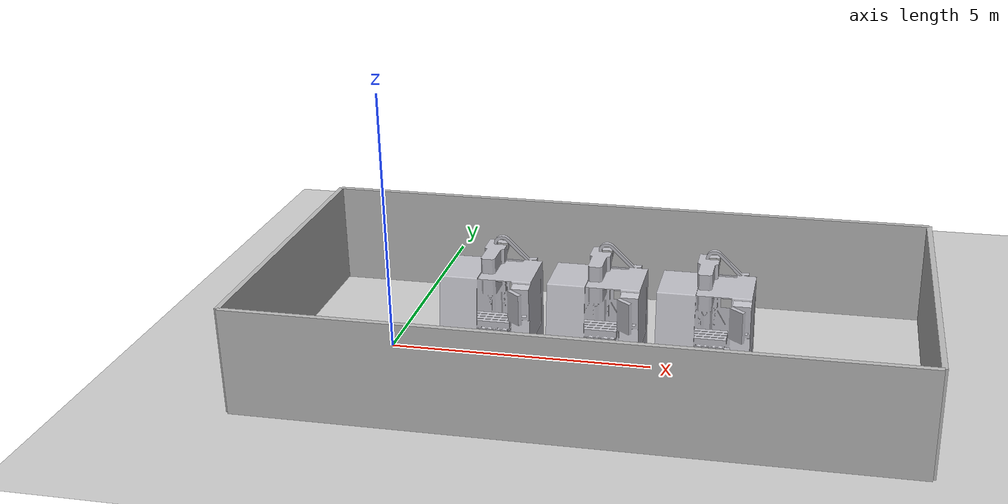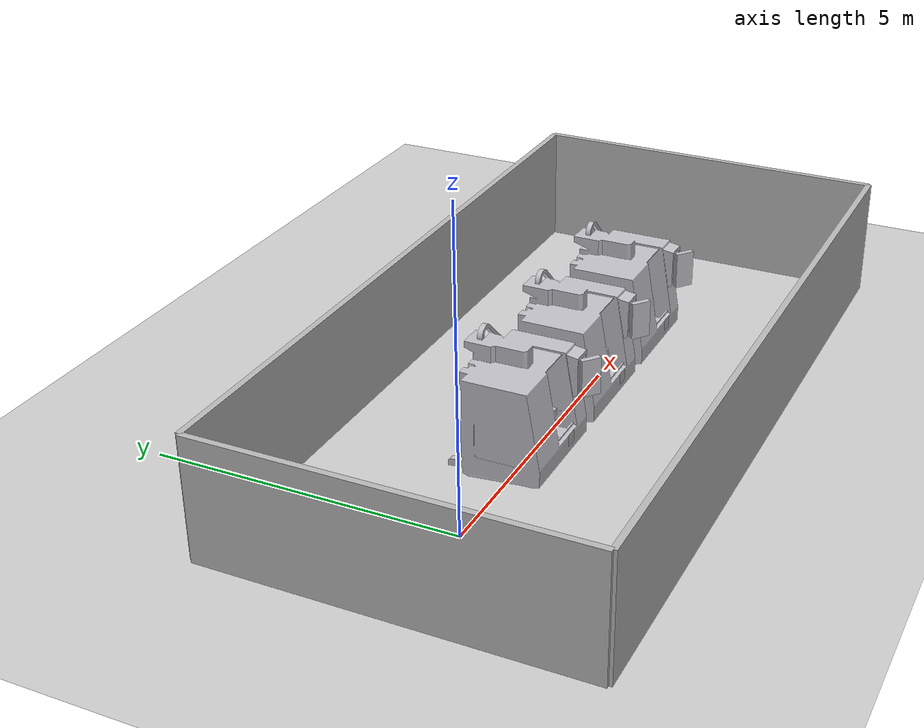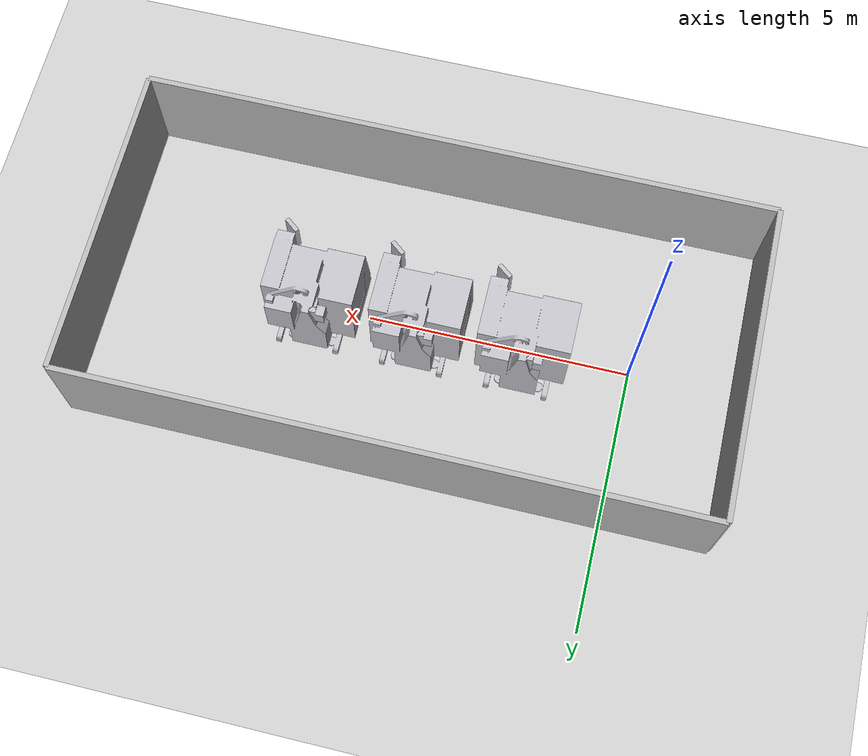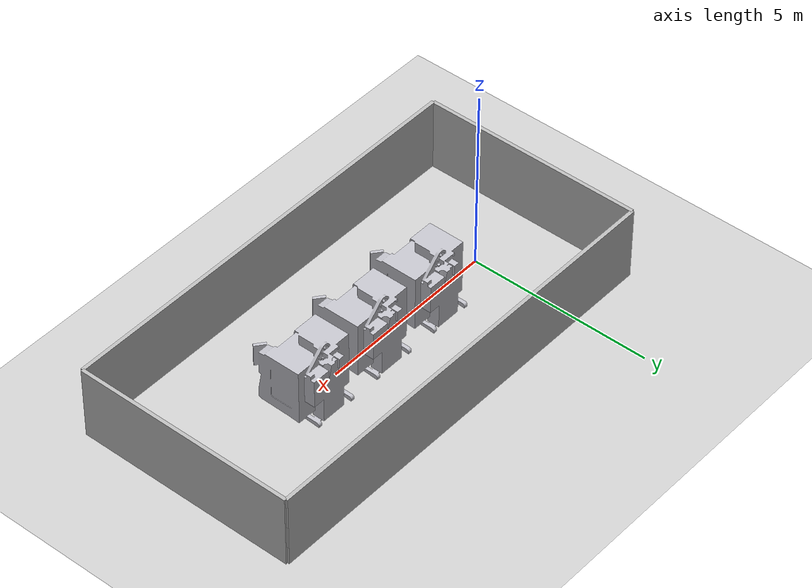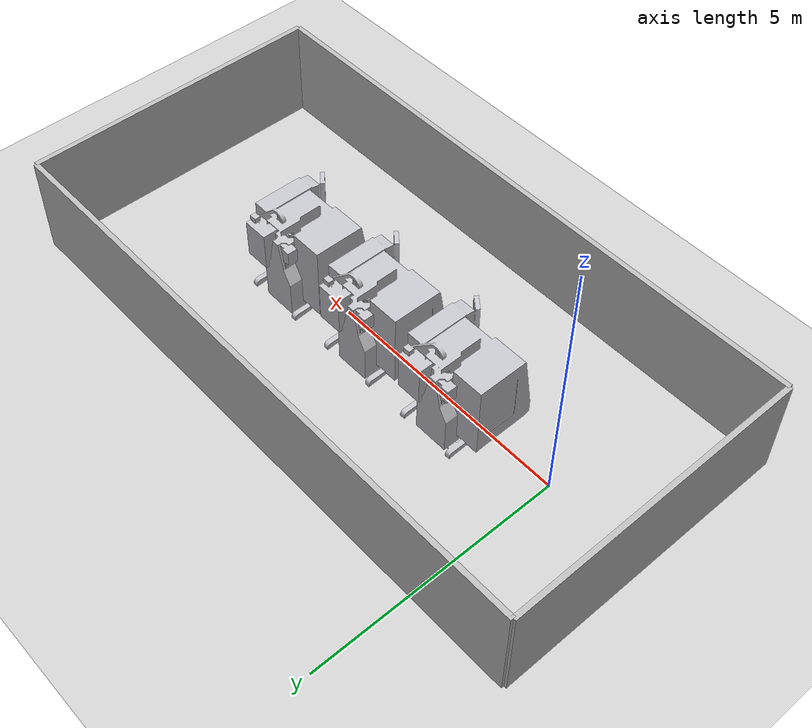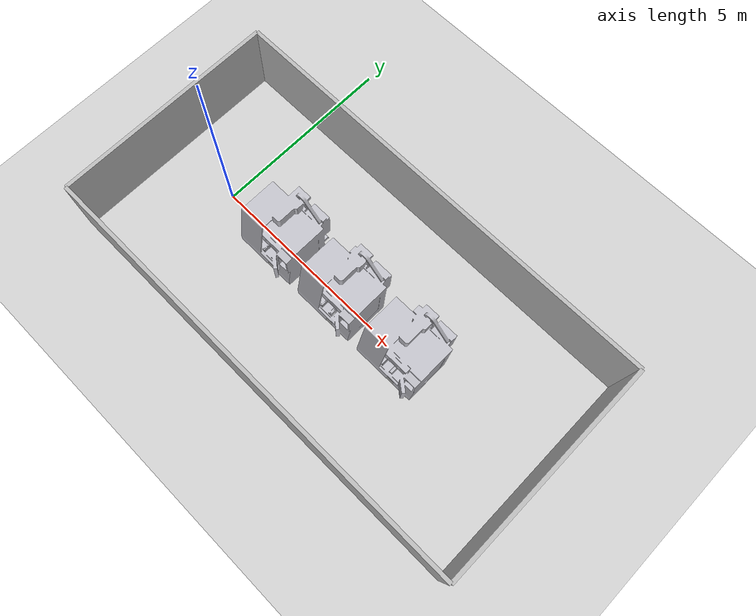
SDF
<?xml version="1.0" ?>
<sdf version="1.6">
  <world name="default">
    <include>
      <uri>model://sun</uri>
    </include>
    <include>
      <uri>model://ground_plane</uri>
    </include>

    <!-- Brick wall perimeter (offline, simple boxes) -->
    <model name="brick_wall_perimeter">
      <static>true</static>

      <!-- Rectangle centered near CNC row: x≈4, y≈0 -->

      <!-- North wall (positive Y) -->
      <link name="north_wall">
        <pose>4 3 1 0 0 0</pose>
        <collision name="collision">
          <geometry>
            <box><size>12 0.1 2</size></box>
          </geometry>
        </collision>
        <visual name="visual">
          <geometry>
            <box><size>12 0.1 2</size></box>
          </geometry>
          <material>
            <script>
              <uri>file://media/materials/scripts/gazebo.material</uri>
              <name>Gazebo/Brick</name>
            </script>
          </material>
        </visual>
      </link>

      <!-- South wall (negative Y) -->
      <link name="south_wall">
        <pose>4 -3 1 0 0 0</pose>
        <collision name="collision">
          <geometry>
            <box><size>12 0.1 2</size></box>
          </geometry>
        </collision>
        <visual name="visual">
          <geometry>
            <box><size>12 0.1 2</size></box>
          </geometry>
          <material>
            <script>
              <uri>file://media/materials/scripts/gazebo.material</uri>
              <name>Gazebo/Brick</name>
            </script>
          </material>
        </visual>
      </link>

      <!-- East wall (positive X) -->
      <link name="east_wall">
        <pose>10 0 1 0 0 0</pose>
        <collision name="collision">
          <geometry>
            <box><size>0.1 6 2</size></box>
          </geometry>
        </collision>
        <visual name="visual">
          <geometry>
            <box><size>0.1 6 2</size></box>
          </geometry>
          <material>
            <script>
              <uri>file://media/materials/scripts/gazebo.material</uri>
              <name>Gazebo/Brick</name>
            </script>
          </material>
        </visual>
      </link>

      <!-- West wall (negative X) -->
      <link name="west_wall">
        <pose>-2 0 1 0 0 0</pose>
        <collision name="collision">
          <geometry>
            <box><size>0.1 6 2</size></box>
          </geometry>
        </collision>
        <visual name="visual">
          <geometry>
            <box><size>0.1 6 2</size></box>
          </geometry>
          <material>
            <script>
              <uri>file://media/materials/scripts/gazebo.material</uri>
              <name>Gazebo/Brick</name>
            </script>
          </material>
        </visual>
      </link>
    </model>

    <!-- Fixed CNC in the world -->
    <include>
      <name>cnc_urdf_1</name>
      <uri>model://cnc_urdf</uri>
      <pose>2 0 1.0 0 0 0</pose>
    </include>

    <!-- Two more CNC machines, 2m apart along +X -->
    <include>
      <name>cnc_urdf_2</name>
      <uri>model://cnc_urdf</uri>
      <pose>4 0 1.0 0 0 0</pose>
    </include>
    <include>
      <name>cnc_urdf_3</name>
      <uri>model://cnc_urdf</uri>
      <pose>6 0 1.0 0 0 0</pose>
    </include>
  </world>
</sdf>

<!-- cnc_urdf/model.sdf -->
<sdf version="1.6">
  <model name="cnc_urdf">
    <static>true</static>

    <link name="base_link">
      <pose>0 0 0 0 0 0</pose>

      <!-- Whole CNC assembly -->
      <visual name="cnc_visual">
        <geometry>
          <mesh>
            <uri>model://cnc_urdf/meshes/base_link.dae</uri>
          </mesh>
        </geometry>
        <!-- Improve readability: brighter diffuse + some specular highlight -->
        <material>
          <ambient>0.35 0.35 0.35 1</ambient>
          <diffuse>0.75 0.75 0.78 1</diffuse>
          <specular>0.25 0.25 0.25 1</specular>
          <emissive>0 0 0 1</emissive>
        </material>
        <cast_shadows>true</cast_shadows>
      </visual>

      <collision name="cnc_collision">
        <geometry>
          <mesh>
            <uri>model://cnc_urdf/meshes/base_link.dae</uri>
          </mesh>
        </geometry>
      </collision>

      <!-- AprilTag visuals (textured planes) -->
      <visual name="april0_tag_visual">
        <!-- from URDF april0_joint origin -->
        <!-- +Z 180deg and -Y 90deg relative rotation -->
        <pose>0.235 -0.692 -0.47097 0 -1.5708 1.5708</pose>
        <geometry>
          <mesh>
            <uri>model://cnc_urdf/meshes/april0_tag.dae</uri>
          </mesh>
        </geometry>
      </visual>

      <visual name="april1_tag_visual">
        <!-- from URDF april1_joint origin -->
        <!-- +Z 180deg and -Y 90deg relative rotation -->
        <pose>0.3181 0.488 0.2081 0 -1.5708 1.5708</pose>
        <geometry>
          <mesh>
            <uri>model://cnc_urdf/meshes/april1_tag.dae</uri>
          </mesh>
        </geometry>
      </visual>
    </link>
  </model>
</sdf>
